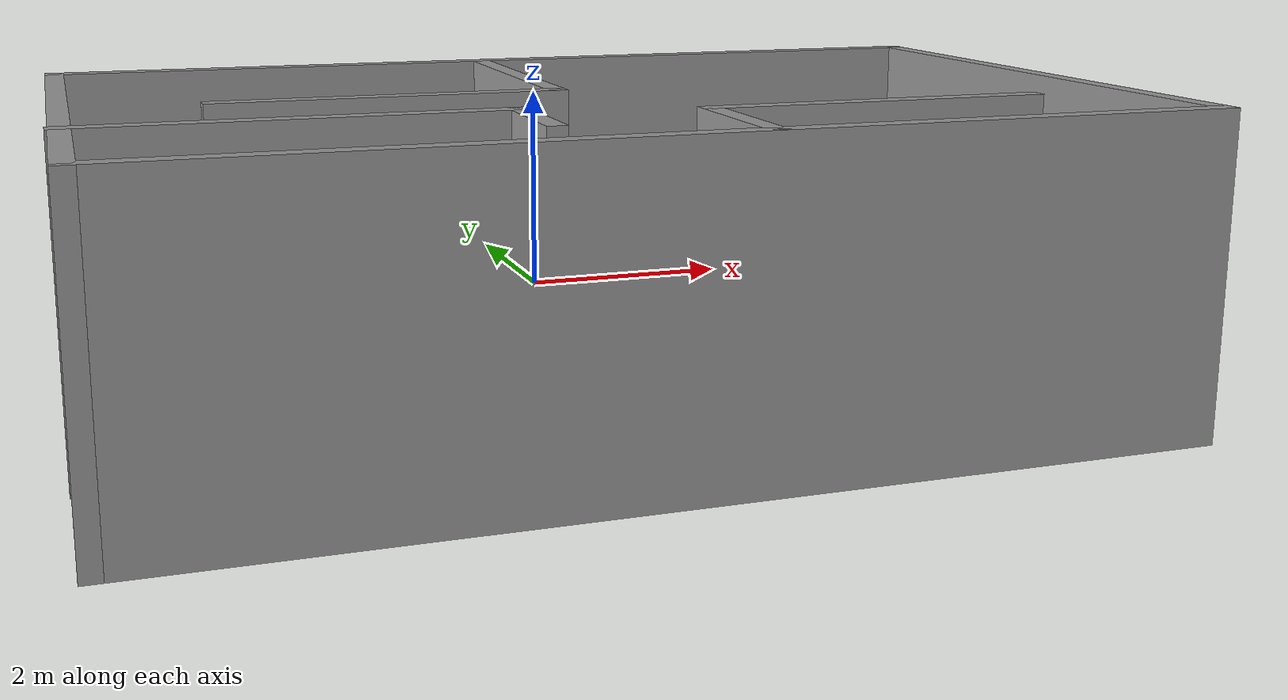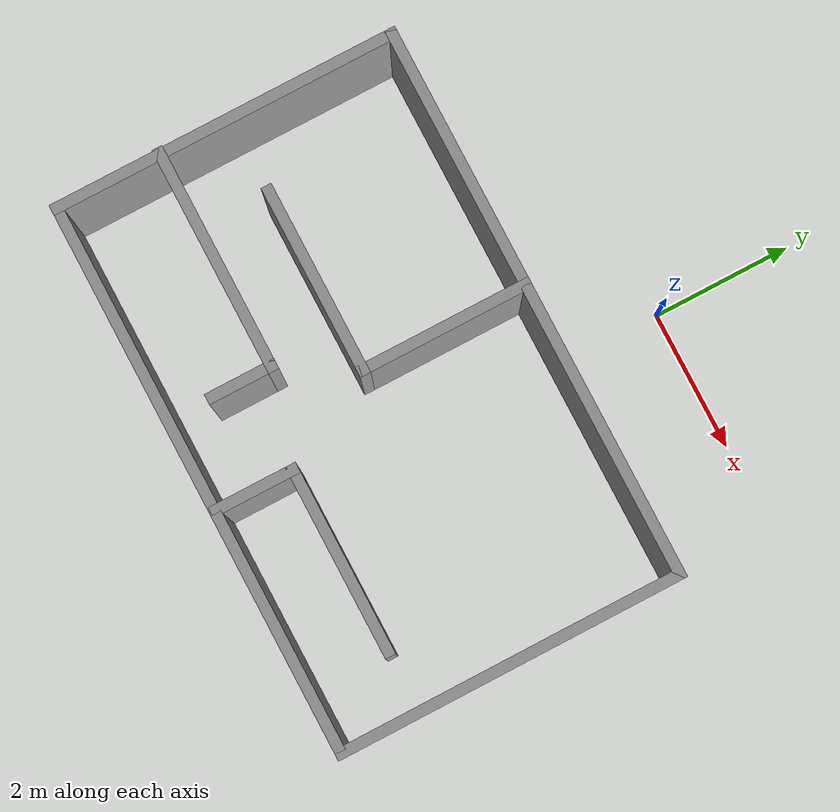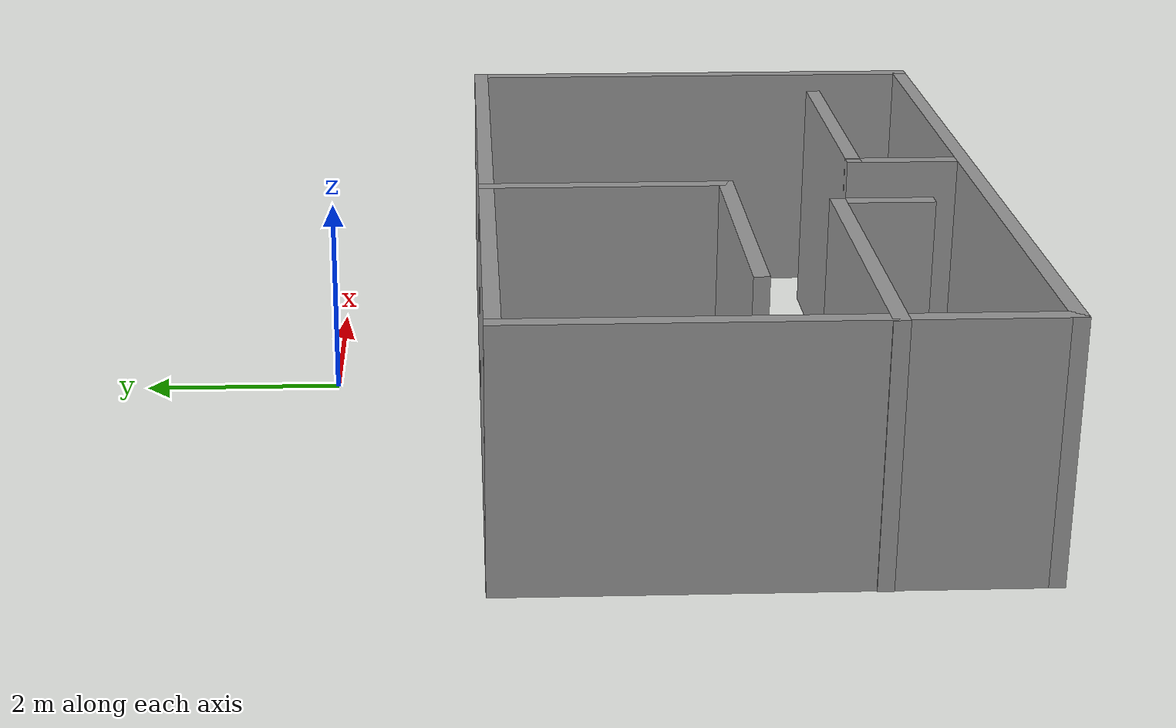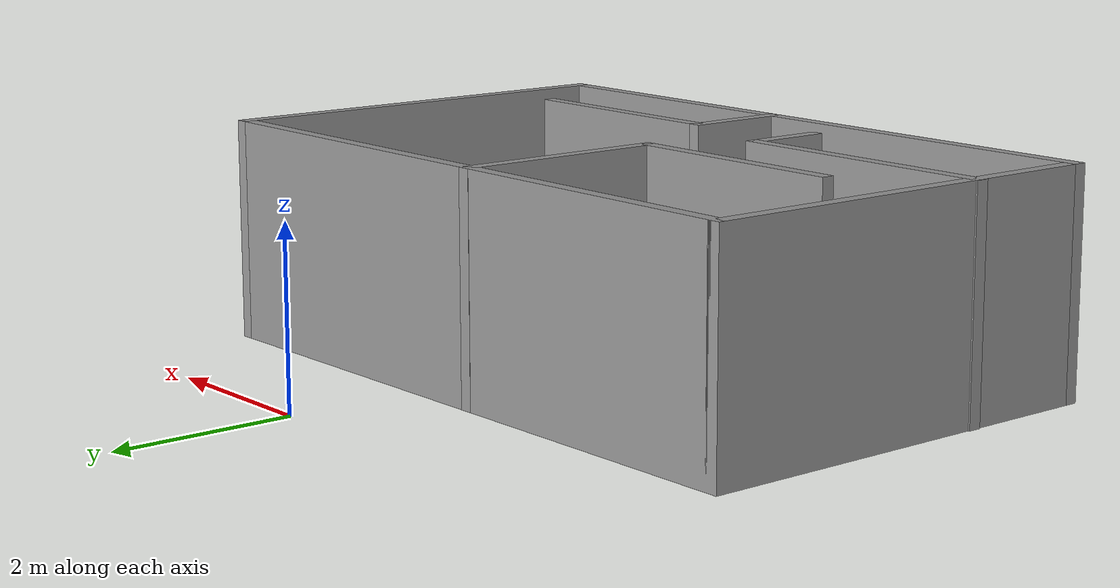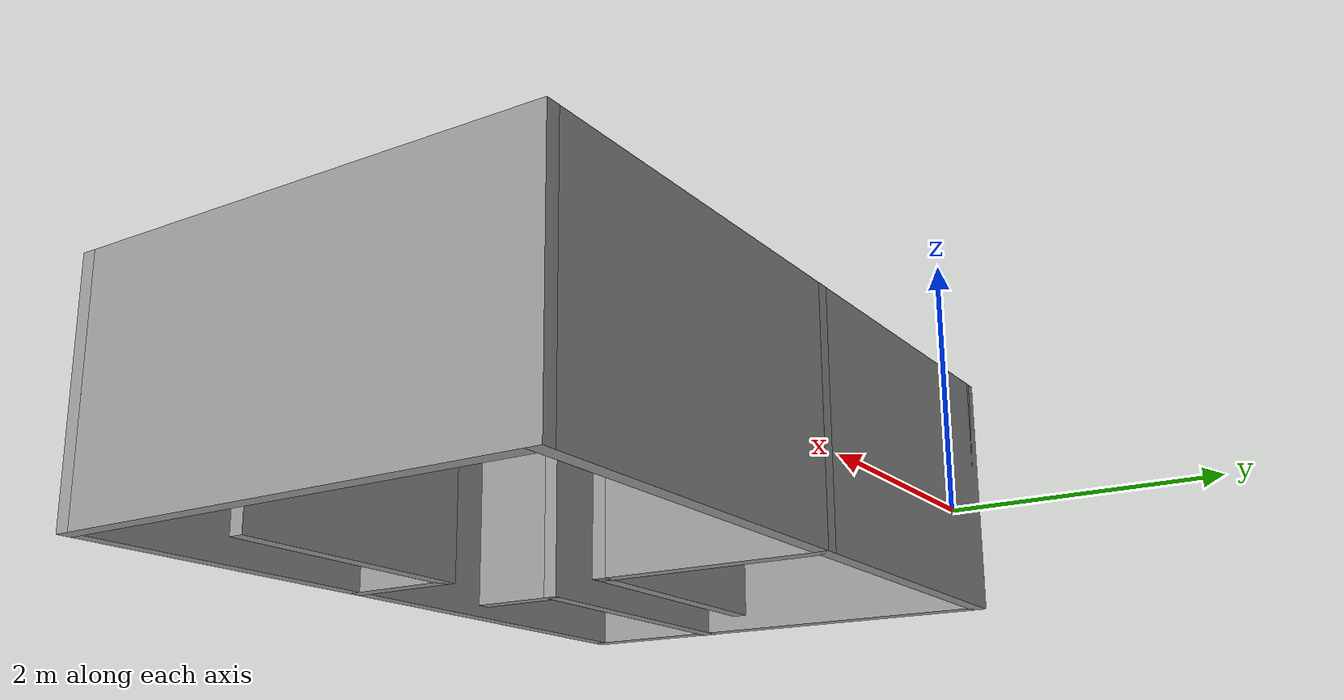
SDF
<?xml version='1.0'?>
<sdf version='1.7'>
  <model name='room'>
    <pose>-0.713864 -3.2425 0 0 -0 0</pose>
    <link name='Wall_15'>
      <collision name='Wall_15_Collision'>
        <geometry>
          <box>
            <size>2.5 0.15 2.5</size>
          </box>
        </geometry>
        <pose>0 0 1.25 0 -0 0</pose>
      </collision>
      <visual name='Wall_15_Visual'>
        <pose>0 0 1.25 0 -0 0</pose>
        <geometry>
          <box>
            <size>2.5 0.15 2.5</size>
          </box>
        </geometry>
        <material>
          <script>
            <uri>file://media/materials/scripts/gazebo.material</uri>
            <name>Gazebo/Grey</name>
          </script>
          <ambient>1 1 1 1</ambient>
        </material>
        <meta>
          <layer>0</layer>
        </meta>
      </visual>
      <pose>-0.246564 0.509318 0 0 -0 -1.5708</pose>
    </link>
    <link name='Wall_16'>
      <collision name='Wall_16_Collision'>
        <geometry>
          <box>
            <size>2.75 0.15 2.5</size>
          </box>
        </geometry>
        <pose>0 0 1.25 0 -0 0</pose>
      </collision>
      <visual name='Wall_16_Visual'>
        <pose>0 0 1.25 0 -0 0</pose>
        <geometry>
          <box>
            <size>2.75 0.15 2.5</size>
          </box>
        </geometry>
        <material>
          <script>
            <uri>file://media/materials/scripts/gazebo.material</uri>
            <name>Gazebo/Grey</name>
          </script>
          <ambient>1 1 1 1</ambient>
        </material>
        <meta>
          <layer>0</layer>
        </meta>
      </visual>
      <pose>-1.54656 -0.665682 0 0 -0 3.14159</pose>
    </link>
    <link name='Wall_18'>
      <collision name='Wall_18_Collision'>
        <geometry>
          <box>
            <size>3.25 0.15 2.5</size>
          </box>
        </geometry>
        <pose>0 0 1.25 0 -0 0</pose>
      </collision>
      <visual name='Wall_18_Visual'>
        <pose>0 0 1.25 0 -0 0</pose>
        <geometry>
          <box>
            <size>3.25 0.15 2.5</size>
          </box>
        </geometry>
        <material>
          <script>
            <uri>file://media/materials/scripts/gazebo.material</uri>
            <name>Gazebo/Grey</name>
          </script>
          <ambient>1 1 1 1</ambient>
        </material>
        <meta>
          <layer>0</layer>
        </meta>
      </visual>
      <pose>-2.38386 -1.67827 0 0 -0 0</pose>
    </link>
    <link name='Wall_19'>
      <collision name='Wall_19_Collision'>
        <geometry>
          <box>
            <size>1 0.15 2.5</size>
          </box>
        </geometry>
        <pose>0 0 1.25 0 -0 0</pose>
      </collision>
      <visual name='Wall_19_Visual'>
        <pose>0 0 1.25 0 -0 0</pose>
        <geometry>
          <box>
            <size>1 0.15 2.5</size>
          </box>
        </geometry>
        <material>
          <script>
            <uri>file://media/materials/scripts/gazebo.material</uri>
            <name>Gazebo/Grey</name>
          </script>
          <ambient>1 1 1 1</ambient>
        </material>
        <meta>
          <layer>0</layer>
        </meta>
      </visual>
      <pose>-0.833864 -2.10328 0 0 -0 -1.5708</pose>
    </link>
    <link name='Wall_2'>
      <collision name='Wall_2_Collision'>
        <geometry>
          <box>
            <size>8 0.15 2.5</size>
          </box>
        </geometry>
        <pose>0 0 1.25 0 -0 0</pose>
      </collision>
      <visual name='Wall_2_Visual'>
        <pose>0 0 1.25 0 -0 0</pose>
        <geometry>
          <box>
            <size>8 0.15 2.5</size>
          </box>
        </geometry>
        <material>
          <script>
            <uri>file://media/materials/scripts/gazebo.material</uri>
            <name>Gazebo/Grey</name>
          </script>
          <ambient>1 1 1 1</ambient>
        </material>
        <meta>
          <layer>0</layer>
        </meta>
      </visual>
      <pose>0.008864 1.6825 0 0 -0 0</pose>
    </link>
    <link name='Wall_21'>
      <collision name='Wall_21_Collision'>
        <geometry>
          <box>
            <size>1.25 0.15 2.5</size>
          </box>
        </geometry>
        <pose>0 0 1.25 0 -0 0</pose>
      </collision>
      <visual name='Wall_21_Visual'>
        <pose>0 0 1.25 0 -0 0</pose>
        <geometry>
          <box>
            <size>1.25 0.15 2.5</size>
          </box>
        </geometry>
        <material>
          <script>
            <uri>file://media/materials/scripts/gazebo.material</uri>
            <name>Gazebo/Grey</name>
          </script>
          <ambient>1 1 1 1</ambient>
        </material>
        <meta>
          <layer>0</layer>
        </meta>
      </visual>
      <pose>0.471008 -2.59657 0 0 -0 1.5708</pose>
    </link>
    <link name='Wall_22'>
      <collision name='Wall_22_Collision'>
        <geometry>
          <box>
            <size>2.75 0.15 2.5</size>
          </box>
        </geometry>
        <pose>0 0 1.25 0 -0 0</pose>
      </collision>
      <visual name='Wall_22_Visual'>
        <pose>0 0 1.25 0 -0 0</pose>
        <geometry>
          <box>
            <size>2.75 0.15 2.5</size>
          </box>
        </geometry>
        <material>
          <script>
            <uri>file://media/materials/scripts/gazebo.material</uri>
            <name>Gazebo/Grey</name>
          </script>
          <ambient>1 1 1 1</ambient>
        </material>
        <meta>
          <layer>0</layer>
        </meta>
      </visual>
      <pose>1.77101 -2.04657 0 0 -0 0</pose>
    </link>
    <link name='Wall_3'>
      <collision name='Wall_3_Collision'>
        <geometry>
          <box>
            <size>5 0.15 2.5</size>
          </box>
        </geometry>
        <pose>0 0 1.25 0 -0 0</pose>
      </collision>
      <visual name='Wall_3_Visual'>
        <pose>0 0 1.25 0 -0 0</pose>
        <geometry>
          <box>
            <size>5 0.15 2.5</size>
          </box>
        </geometry>
        <material>
          <script>
            <uri>file://media/materials/scripts/gazebo.material</uri>
            <name>Gazebo/Grey</name>
          </script>
          <ambient>1 1 1 1</ambient>
        </material>
        <meta>
          <layer>0</layer>
        </meta>
      </visual>
      <pose>3.93386 -0.7425 0 0 -0 -1.5708</pose>
    </link>
    <link name='Wall_4'>
      <collision name='Wall_4_Collision'>
        <geometry>
          <box>
            <size>8 0.15 2.5</size>
          </box>
        </geometry>
        <pose>0 0 1.25 0 -0 0</pose>
      </collision>
      <visual name='Wall_4_Visual'>
        <pose>0 0 1.25 0 -0 0</pose>
        <geometry>
          <box>
            <size>8 0.15 2.5</size>
          </box>
        </geometry>
        <material>
          <script>
            <uri>file://media/materials/scripts/gazebo.material</uri>
            <name>Gazebo/Grey</name>
          </script>
          <ambient>1 1 1 1</ambient>
        </material>
        <meta>
          <layer>0</layer>
        </meta>
      </visual>
      <pose>0.008864 -3.1675 0 0 -0 3.14159</pose>
    </link>
    <link name='Wall_5'>
      <collision name='Wall_5_Collision'>
        <geometry>
          <box>
            <size>5 0.15 2.5</size>
          </box>
        </geometry>
        <pose>0 0 1.25 0 -0 0</pose>
      </collision>
      <visual name='Wall_5_Visual'>
        <pose>0 0 1.25 0 -0 0</pose>
        <geometry>
          <box>
            <size>5 0.15 2.5</size>
          </box>
        </geometry>
        <material>
          <script>
            <uri>file://media/materials/scripts/gazebo.material</uri>
            <name>Gazebo/Grey</name>
          </script>
          <ambient>1 1 1 1</ambient>
        </material>
        <meta>
          <layer>0</layer>
        </meta>
      </visual>
      <pose>-3.91614 -0.7425 0 0 -0 1.5708</pose>
    </link>
    <static>1</static>
  </model>
</sdf>
